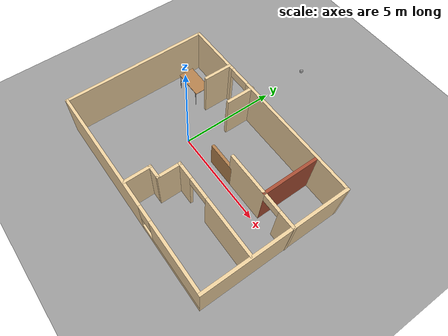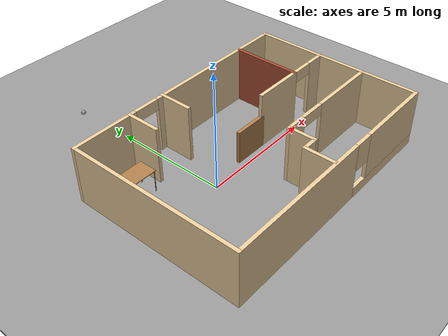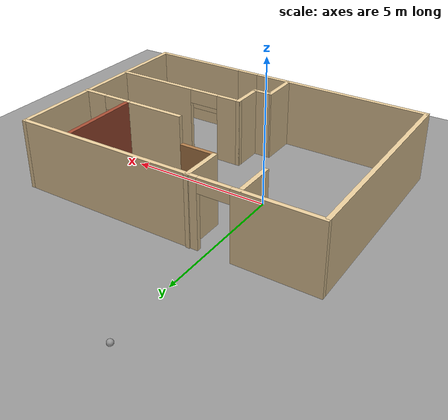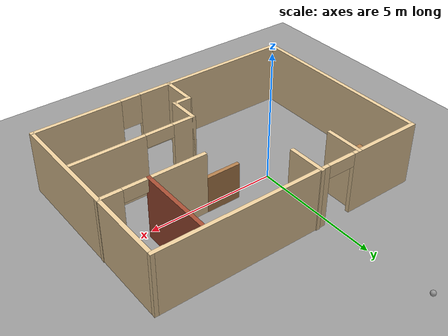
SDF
<sdf version="1.6">
 <world name="default">
  <plugin name="welcome" filename="libwelcome.so"/>
  <light name="sun" type="directional">
   <pose>0 0 10 0 -0 0</pose>
   <diffuse>0.8 0.8 0.8 1</diffuse>
   <specular>0.2 0.2 0.2 1</specular>
   <attenuation>
    <range>1000</range>
    <constant>0.9</constant>
    <linear>0.01</linear>
    <quadratic>0.001</quadratic>
   </attenuation>
   <direction>-0.5 0.1 -0.9</direction>
  </light>
  <model name="ground_plane">
   <static>1</static>
   <link name="link">
    <collision name="collision">
     <geometry><plane><normal>0 0 1</normal><size>100 100</size></plane></geometry>
     <surface><friction><ode><mu>100</mu><mu2>50</mu2></ode></friction></surface>
    </collision>
    <visual name="visual">
     <cast_shadows>0</cast_shadows>
     <geometry><plane><normal>0 0 1</normal><size>100 100</size></plane></geometry>
     <material>
      <script><uri>file://media/materials/scripts/gazebo.material</uri><name>Gazebo/Grey</name></script>
     </material>
    </visual>
   </link>
  </model>
  <gravity>0 0 -9.8</gravity>
  <magnetic_field>6e-06 2.3e-05 -4.2e-05</magnetic_field>
  <atmosphere type="adiabatic"/>
  <physics name="default_physics" default="0" type="ode">
   <max_step_size>0.001</max_step_size>
   <real_time_factor>1</real_time_factor>
   <real_time_update_rate>1000</real_time_update_rate>
  </physics>
  <scene><ambient>0.4 0.4 0.4 1</ambient><background>0.7 0.7 0.7 1</background><shadows>1</shadows></scene>
  <spherical_coordinates>
   <surface_model>EARTH_WGS84</surface_model>
   <latitude_deg>0</latitude_deg>
   <longitude_deg>0</longitude_deg>
   <elevation>0</elevation>
   <heading_deg>0</heading_deg>
  </spherical_coordinates>
  <model name="building">
   <pose>1.64502 -0.447703 0 0 -0 0</pose>
   <link name="Wall_10">
    <collision name="Wall_10_Collision">
     <geometry><box><size>7.5 0.15 2.5</size></box></geometry>
     <pose>0 0 1.25 0 -0 0</pose>
    </collision>
    <visual name="Wall_10_Visual">
     <pose>0 0 1.25 0 -0 0</pose>
     <geometry><box><size>7.5 0.15 2.5</size></box></geometry>
     <material>
      <script><uri>file://media/materials/scripts/gazebo.material</uri><name>Gazebo/Grey</name></script>
      <ambient>0.921569 0.807843 0.615686 1</ambient>
     </material>
     <meta><layer>0</layer></meta>
    </visual>
    <pose>5.29084 -0.017445 0 0 -0 1.5708</pose>
   </link>
   <link name="Wall_12">
    <collision name="Wall_12_Collision">
     <geometry><box><size>1.448 0.15 2.5</size></box></geometry>
     <pose>0 0 1.25 0 -0 0</pose>
    </collision>
    <visual name="Wall_12_Visual">
     <pose>0 0 1.25 0 -0 0</pose>
     <geometry><box><size>1.448 0.15 2.5</size></box></geometry>
     <material>
      <script><uri>file://media/materials/scripts/gazebo.material</uri><name>Gazebo/Grey</name></script>
      <ambient>0.921569 0.807843 0.615686 1</ambient>
     </material>
     <meta><layer>0</layer></meta>
    </visual>
    <pose>-0.220837 -3.04333 0 0 -0 1.5708</pose>
   </link>
   <link name="Wall_13">
    <collision name="Wall_13_Collision">
     <geometry><box><size>0.75 0.15 2.5</size></box></geometry>
     <pose>0 0 1.25 0 -0 0</pose>
    </collision>
    <visual name="Wall_13_Visual">
     <pose>0 0 1.25 0 -0 0</pose>
     <geometry><box><size>0.75 0.15 2.5</size></box></geometry>
     <material>
      <script><uri>file://media/materials/scripts/gazebo.material</uri><name>Gazebo/Grey</name></script>
      <ambient>0.921569 0.807843 0.615686 1</ambient>
     </material>
     <meta><layer>0</layer></meta>
    </visual>
    <pose>0.079367 -2.39428 0 0 -0 0.000154</pose>
   </link>
   <link name="Wall_14">
    <collision name="Wall_14_Collision">
     <geometry><box><size>1.25 0.15 2.5</size></box></geometry>
     <pose>0 0 1.25 0 -0 0</pose>
    </collision>
    <visual name="Wall_14_Visual">
     <pose>0 0 1.25 0 -0 0</pose>
     <geometry><box><size>1.25 0.15 2.5</size></box></geometry>
     <material>
      <script><uri>file://media/materials/scripts/gazebo.material</uri><name>Gazebo/Grey</name></script>
      <ambient>0.921569 0.807843 0.615686 1</ambient>
     </material>
     <meta><layer>0</layer></meta>
    </visual>
    <pose>0.379571 -1.84424 0 0 -0 1.5708</pose>
   </link>
   <link name="Wall_15">
    <pose>2.80457 -1.29424 0 0 -0 0</pose>
    <visual name="Wall_15_Visual_0">
     <pose>-2.04188 0 1.25 0 -0 0</pose>
     <geometry><box><size>0.916244 0.15 2.5</size></box></geometry>
     <material>
      <script><uri>file://media/materials/scripts/gazebo.material</uri><name>Gazebo/Grey</name></script>
      <ambient>0.921569 0.807843 0.615686 1</ambient>
     </material>
     <meta><layer>0</layer></meta>
    </visual>
    <collision name="Wall_15_Collision_0">
     <geometry><box><size>0.916244 0.15 2.5</size></box></geometry>
     <pose>-2.04188 0 1.25 0 -0 0</pose>
    </collision>
    <visual name="Wall_15_Visual_1">
     <pose>1.00812 0 1.25 0 -0 0</pose>
     <geometry><box><size>2.98376 0.15 2.5</size></box></geometry>
     <material>
      <script><uri>file://media/materials/scripts/gazebo.material</uri><name>Gazebo/Grey</name></script>
      <ambient>0.921569 0.807843 0.615686 1</ambient>
     </material>
     <meta><layer>0</layer></meta>
    </visual>
    <collision name="Wall_15_Collision_1">
     <geometry><box><size>2.98376 0.15 2.5</size></box></geometry>
     <pose>1.00812 0 1.25 0 -0 0</pose>
    </collision>
    <visual name="Wall_15_Visual_2">
     <pose>-1.03376 0 2.25 0 -0 0</pose>
     <geometry><box><size>1.1 0.15 0.5</size></box></geometry>
     <material>
      <script><uri>file://media/materials/scripts/gazebo.material</uri><name>Gazebo/Grey</name></script>
      <ambient>0.921569 0.807843 0.615686 1</ambient>
     </material>
     <meta><layer>0</layer></meta>
    </visual>
    <collision name="Wall_15_Collision_2">
     <geometry><box><size>1.1 0.15 0.5</size></box></geometry>
     <pose>-1.03376 0 2.25 0 -0 0</pose>
    </collision>
   </link>
   <link name="Wall_19">
    <collision name="Wall_19_Collision">
     <geometry><box><size>3 0.15 2.5</size></box></geometry>
     <pose>0 0 1.25 0 -0 0</pose>
    </collision>
    <visual name="Wall_19_Visual">
     <pose>0 0 1.25 0 -0 0</pose>
     <geometry><box><size>3 0.15 2.5</size></box></geometry>
     <material>
      <script><uri>file://media/materials/scripts/gazebo.material</uri><name>Gazebo/Bricks</name></script>
      <ambient>0.921569 0.807843 0.615686 1</ambient>
     </material>
     <meta><layer>0</layer></meta>
    </visual>
    <pose>3.48413 2.17983 0 0 0 -1.57077</pose>
   </link>
   <link name="Wall_20">
    <pose>4.39666 0.754668 0 0 -0 0</pose>
    <visual name="Wall_20_Visual_0">
     <pose>-0.912682 0 1.25 0 -0 0</pose>
     <geometry><box><size>0.149636 0.15 2.5</size></box></geometry>
     <material>
      <script><uri>file://media/materials/scripts/gazebo.material</uri><name>Gazebo/Grey</name></script>
      <ambient>0.921569 0.807843 0.615686 1</ambient>
     </material>
     <meta><layer>0</layer></meta>
    </visual>
    <collision name="Wall_20_Collision_0">
     <geometry><box><size>0.149636 0.15 2.5</size></box></geometry>
     <pose>-0.912682 0 1.25 0 -0 0</pose>
    </collision>
    <visual name="Wall_20_Visual_1">
     <pose>0.524818 0 1.25 0 -0 0</pose>
     <geometry><box><size>0.925364 0.15 2.5</size></box></geometry>
     <material>
      <script><uri>file://media/materials/scripts/gazebo.material</uri><name>Gazebo/Grey</name></script>
      <ambient>0.921569 0.807843 0.615686 1</ambient>
     </material>
     <meta><layer>0</layer></meta>
    </visual>
    <collision name="Wall_20_Collision_1">
     <geometry><box><size>0.925364 0.15 2.5</size></box></geometry>
     <pose>0.524818 0 1.25 0 -0 0</pose>
    </collision>
    <visual name="Wall_20_Visual_2">
     <pose>-0.387864 0 2.25 0 -0 0</pose>
     <geometry><box><size>0.9 0.15 0.5</size></box></geometry>
     <material>
      <script><uri>file://media/materials/scripts/gazebo.material</uri><name>Gazebo/Grey</name></script>
      <ambient>0.921569 0.807843 0.615686 1</ambient>
     </material>
     <meta><layer>0</layer></meta>
    </visual>
    <collision name="Wall_20_Collision_2">
     <geometry><box><size>0.9 0.15 0.5</size></box></geometry>
     <pose>-0.387864 0 2.25 0 -0 0</pose>
    </collision>
   </link>
   <link name="Wall_22">
    <collision name="Wall_22_Collision">
     <geometry><box><size>2.25 0.15 2.5</size></box></geometry>
     <pose>0 0 1.25 0 -0 0</pose>
    </collision>
    <visual name="Wall_22_Visual">
     <pose>0 0 1.25 0 -0 0</pose>
     <geometry><box><size>2.25 0.15 2.5</size></box></geometry>
     <material>
      <script><uri>file://media/materials/scripts/gazebo.material</uri><name>Gazebo/Grey</name></script>
      <ambient>0.921569 0.807843 0.615686 1</ambient>
     </material>
     <meta><layer>0</layer></meta>
    </visual>
    <pose>2.43416 0.754668 0 0 -0 3.14159</pose>
   </link>
   <link name="Wall_23">
    <collision name="Wall_23_Collision">
     <geometry><box><size>1.5 0.15 1.5</size></box></geometry>
     <pose>0 0 0.75 0 -0 0</pose>
    </collision>
    <visual name="Wall_23_Visual">
     <pose>0 0 0.75 0 -0 0</pose>
     <geometry><box><size>1.5 0.15 1.5</size></box></geometry>
     <material>
      <script><uri>file://media/materials/scripts/gazebo.material</uri><name>Gazebo/Wood</name></script>
      <ambient>0.921569 0.807843 0.615686 1</ambient>
     </material>
     <meta><layer>0</layer></meta>
    </visual>
    <pose>0.709163 0.754668 0 0 -0 3.14159</pose>
   </link>
   <link name="Wall_25">
    <collision name="Wall_25_Collision">
     <geometry><box><size>1.5 0.15 2.5</size></box></geometry>
     <pose>0 0 1.25 0 -0 0</pose>
    </collision>
    <visual name="Wall_25_Visual">
     <pose>0 0 1.25 0 -0 0</pose>
     <geometry><box><size>1.5 0.15 2.5</size></box></geometry>
     <material>
      <script><uri>file://media/materials/scripts/gazebo.material</uri><name>Gazebo/Grey</name></script>
      <ambient>0.921569 0.807843 0.615686 1</ambient>
     </material>
     <meta><layer>0</layer></meta>
    </visual>
    <pose>-2.74237 2.98246 0 0 0 -1.5708</pose>
   </link>
   <link name="Wall_27">
    <collision name="Wall_27_Collision">
     <geometry><box><size>1.5 0.15 2.5</size></box></geometry>
     <pose>0 0 1.25 0 -0 0</pose>
    </collision>
    <visual name="Wall_27_Visual">
     <pose>0 0 1.25 0 -0 0</pose>
     <geometry><box><size>1.5 0.15 2.5</size></box></geometry>
     <material>
      <script><uri>file://media/materials/scripts/gazebo.material</uri><name>Gazebo/Grey</name></script>
      <ambient>0.921569 0.807843 0.615686 1</ambient>
     </material>
     <meta><layer>0</layer></meta>
    </visual>
    <pose>-1.04583 3.01744 0 0 0 -1.5708</pose>
   </link>
   <link name="Wall_5">
    <pose>-0.009163 3.65756 0 0 -0 3.14159</pose>
    <visual name="Wall_5_Visual_0">
     <pose>-2.00204 0 1.25 0 -0 0</pose>
     <geometry><box><size>6.74592 0.15 2.5</size></box></geometry>
     <material>
      <script><uri>file://media/materials/scripts/gazebo.material</uri><name>Gazebo/Grey</name></script>
      <ambient>0.921569 0.807843 0.615686 1</ambient>
     </material>
     <meta><layer>0</layer></meta>
    </visual>
    <collision name="Wall_5_Collision_0">
     <geometry><box><size>6.74592 0.15 2.5</size></box></geometry>
     <pose>-2.00204 0 1.25 0 -0 0</pose>
    </collision>
    <visual name="Wall_5_Visual_1">
     <pose>3.92296 0 1.25 0 -0 0</pose>
     <geometry><box><size>2.90408 0.15 2.5</size></box></geometry>
     <material>
      <script><uri>file://media/materials/scripts/gazebo.material</uri><name>Gazebo/Grey</name></script>
      <ambient>0.921569 0.807843 0.615686 1</ambient>
     </material>
     <meta><layer>0</layer></meta>
    </visual>
    <collision name="Wall_5_Collision_1">
     <geometry><box><size>2.90408 0.15 2.5</size></box></geometry>
     <pose>3.92296 0 1.25 0 -0 0</pose>
    </collision>
    <visual name="Wall_5_Visual_2">
     <pose>1.92092 0 2.25 0 -0 0</pose>
     <geometry><box><size>1.1 0.15 0.5</size></box></geometry>
     <material>
      <script><uri>file://media/materials/scripts/gazebo.material</uri><name>Gazebo/Grey</name></script>
      <ambient>0.921569 0.807843 0.615686 1</ambient>
     </material>
     <meta><layer>0</layer></meta>
    </visual>
    <collision name="Wall_5_Collision_2">
     <geometry><box><size>1.1 0.15 0.5</size></box></geometry>
     <pose>1.92092 0 2.25 0 -0 0</pose>
    </collision>
   </link>
   <link name="Wall_8">
    <collision name="Wall_8_Collision">
     <geometry><box><size>7.5 0.15 2.5</size></box></geometry>
     <pose>0 0 1.25 0 -0 0</pose>
    </collision>
    <visual name="Wall_8_Visual">
     <pose>0 0 1.25 0 -0 0</pose>
     <geometry><box><size>7.5 0.15 2.5</size></box></geometry>
     <material>
      <script><uri>file://media/materials/scripts/gazebo.material</uri><name>Gazebo/Grey</name></script>
      <ambient>0.921569 0.807843 0.615686 1</ambient>
     </material>
     <meta><layer>0</layer></meta>
    </visual>
    <pose>-5.30916 -0.017445 0 0 0 -1.5708</pose>
   </link>
   <link name="Wall_9">
    <pose>-0.009163 -3.69245 0 0 -0 0</pose>
    <visual name="Wall_9_Visual_0">
     <pose>-2.15529 0 1.25 0 -0 0</pose>
     <geometry><box><size>6.43941 0.15 2.5</size></box></geometry>
     <material>
      <script><uri>file://media/materials/scripts/gazebo.material</uri><name>Gazebo/Grey</name></script>
      <ambient>0.921569 0.807843 0.615686 1</ambient>
     </material>
     <meta><layer>0</layer></meta>
    </visual>
    <collision name="Wall_9_Collision_0">
     <geometry><box><size>6.43941 0.15 2.5</size></box></geometry>
     <pose>-2.15529 0 1.25 0 -0 0</pose>
    </collision>
    <visual name="Wall_9_Visual_1">
     <pose>3.21971 0 0.25 0 -0 0</pose>
     <geometry><box><size>4.31059 0.15 0.5</size></box></geometry>
     <material>
      <script><uri>file://media/materials/scripts/gazebo.material</uri><name>Gazebo/Grey</name></script>
      <ambient>0.921569 0.807843 0.615686 1</ambient>
     </material>
     <meta><layer>0</layer></meta>
    </visual>
    <collision name="Wall_9_Collision_1">
     <geometry><box><size>4.31059 0.15 0.5</size></box></geometry>
     <pose>3.21971 0 0.25 0 -0 0</pose>
    </collision>
    <visual name="Wall_9_Visual_2">
     <pose>3.61971 0 1.5 0 -0 0</pose>
     <geometry><box><size>3.51059 0.15 2</size></box></geometry>
     <material>
      <script><uri>file://media/materials/scripts/gazebo.material</uri><name>Gazebo/Grey</name></script>
      <ambient>0.921569 0.807843 0.615686 1</ambient>
     </material>
     <meta><layer>0</layer></meta>
    </visual>
    <collision name="Wall_9_Collision_2">
     <geometry><box><size>3.51059 0.15 2</size></box></geometry>
     <pose>3.61971 0 1.5 0 -0 0</pose>
    </collision>
    <visual name="Wall_9_Visual_3">
     <pose>1.46441 0 1.9 0 -0 0</pose>
     <geometry><box><size>0.8 0.15 1.2</size></box></geometry>
     <material>
      <script><uri>file://media/materials/scripts/gazebo.material</uri><name>Gazebo/Grey</name></script>
      <ambient>0.921569 0.807843 0.615686 1</ambient>
     </material>
     <meta><layer>0</layer></meta>
    </visual>
    <collision name="Wall_9_Collision_3">
     <geometry><box><size>0.8 0.15 1.2</size></box></geometry>
     <pose>1.46441 0 1.9 0 -0 0</pose>
    </collision>
   </link>
   <static>1</static>
  </model>
  <model name="ground_plane_0">
   <static>1</static>
   <link name="link">
    <collision name="collision">
     <geometry><plane><normal>0 0 1</normal><size>100 100</size></plane></geometry>
     <surface><friction><ode><mu>100</mu><mu2>50</mu2></ode></friction></surface>
    </collision>
    <visual name="visual">
     <cast_shadows>0</cast_shadows>
     <geometry><plane><normal>0 0 1</normal><size>100 100</size></plane></geometry>
     <material>
      <script><uri>file://media/materials/scripts/gazebo.material</uri><name>Gazebo/Grey</name></script>
     </material>
    </visual>
   </link>
   <pose>-1.07501 -1.07039 0 0 -0 0</pose>
  </model>
  <model name="table">
   <static>1</static>
   <link name="link">
    <collision name="surface">
     <pose>0 0 1 0 -0 0</pose>
     <geometry><box><size>1.5 0.8 0.03</size></box></geometry>
     <surface><friction><ode><mu>0.6</mu><mu2>0.6</mu2></ode></friction></surface>
    </collision>
    <visual name="visual1">
     <pose>0 0 1 0 -0 0</pose>
     <geometry><box><size>1.5 0.8 0.03</size></box></geometry>
     <material>
      <script><uri>file://media/materials/scripts/gazebo.material</uri><name>Gazebo/Wood</name></script>
     </material>
    </visual>
    <collision name="front_left_leg">
     <pose>0.68 0.38 0.5 0 -0 0</pose>
     <geometry><cylinder><radius>0.02</radius><length>1</length></cylinder></geometry>
    </collision>
    <visual name="front_left_leg">
     <pose>0.68 0.38 0.5 0 -0 0</pose>
     <geometry><cylinder><radius>0.02</radius><length>1</length></cylinder></geometry>
     <material>
      <script><uri>file://media/materials/scripts/gazebo.material</uri><name>Gazebo/Grey</name></script>
     </material>
    </visual>
    <collision name="front_right_leg">
     <pose>0.68 -0.38 0.5 0 -0 0</pose>
     <geometry><cylinder><radius>0.02</radius><length>1</length></cylinder></geometry>
    </collision>
    <visual name="front_right_leg">
     <pose>0.68 -0.38 0.5 0 -0 0</pose>
     <geometry><cylinder><radius>0.02</radius><length>1</length></cylinder></geometry>
     <material>
      <script><uri>file://media/materials/scripts/gazebo.material</uri><name>Gazebo/Grey</name></script>
     </material>
    </visual>
    <collision name="back_right_leg">
     <pose>-0.68 -0.38 0.5 0 -0 0</pose>
     <geometry><cylinder><radius>0.02</radius><length>1</length></cylinder></geometry>
    </collision>
    <visual name="back_right_leg">
     <pose>-0.68 -0.38 0.5 0 -0 0</pose>
     <geometry><cylinder><radius>0.02</radius><length>1</length></cylinder></geometry>
     <material>
      <script><uri>file://media/materials/scripts/gazebo.material</uri><name>Gazebo/Grey</name></script>
     </material>
    </visual>
    <collision name="back_left_leg">
     <pose>-0.68 0.38 0.5 0 -0 0</pose>
     <geometry><cylinder><radius>0.02</radius><length>1</length></cylinder></geometry>
    </collision>
    <visual name="back_left_leg">
     <pose>-0.68 0.38 0.5 0 -0 0</pose>
     <geometry><cylinder><radius>0.02</radius><length>1</length></cylinder></geometry>
     <material>
      <script><uri>file://media/materials/scripts/gazebo.material</uri><name>Gazebo/Grey</name></script>
     </material>
    </visual>
   </link>
   <pose>-2.29376 1.95661 0 0 -0 0</pose>
  </model>
  <model name="my_ball">
   <link name="link_0">
    <inertial>
     <mass>1</mass>
     <inertia><ixx>0.1</ixx><ixy>0</ixy><ixz>0</ixz><iyy>0.1</iyy><iyz>0</iyz><izz>0.1</izz></inertia>
    </inertial>
    <visual name="visual">
     <geometry><sphere><radius>0.1</radius></sphere></geometry>
     <material>
      <lighting>1</lighting>
      <script><uri>file://media/materials/scripts/gazebo.material</uri><name>Gazebo/Grey</name></script>
      <shader type="pixel"><normal_map>__default__</normal_map></shader>
      <ambient>1 1 1 1</ambient>
      <diffuse>1 1 1 1</diffuse>
      <specular>1 1 1 1</specular>
      <emissive>1 1 1 1</emissive>
     </material>
    </visual>
    <collision name="collision">
     <geometry><sphere><radius>0.1</radius></sphere></geometry>
     <surface>
      <friction>
       <ode><mu>1</mu><mu2>1</mu2><fdir1>0 0 0</fdir1><slip1>0</slip1><slip2>0</slip2></ode>
       <torsional>
        <coefficient>1</coefficient>
        <patch_radius>0</patch_radius>
        <surface_radius>0</surface_radius>
        <use_patch_radius>1</use_patch_radius>
        <ode><slip>0</slip></ode>
       </torsional>
      </friction>
      <bounce><restitution_coefficient>0</restitution_coefficient><threshold>1e+06</threshold></bounce>
      <contact>
       <collide_without_contact>0</collide_without_contact>
       <collide_without_contact_bitmask>1</collide_without_contact_bitmask>
       <collide_bitmask>1</collide_bitmask>
       <ode>
        <soft_cfm>0</soft_cfm>
        <soft_erp>0.2</soft_erp>
        <kp>1e+13</kp>
        <kd>1</kd>
        <max_vel>0.01</max_vel>
        <min_depth>0</min_depth>
       </ode>
       <bullet>
        <split_impulse>1</split_impulse>
        <split_impulse_penetration_threshold>-0.01</split_impulse_penetration_threshold>
        <soft_cfm>0</soft_cfm>
        <soft_erp>0.2</soft_erp>
        <kp>1e+13</kp>
        <kd>1</kd>
       </bullet>
      </contact>
     </surface>
    </collision>
   </link>
   <static>0</static>
   <pose>-0.134651 7.55574 0.099991 0 -0 0</pose>
  </model>
 </world>
</sdf>
